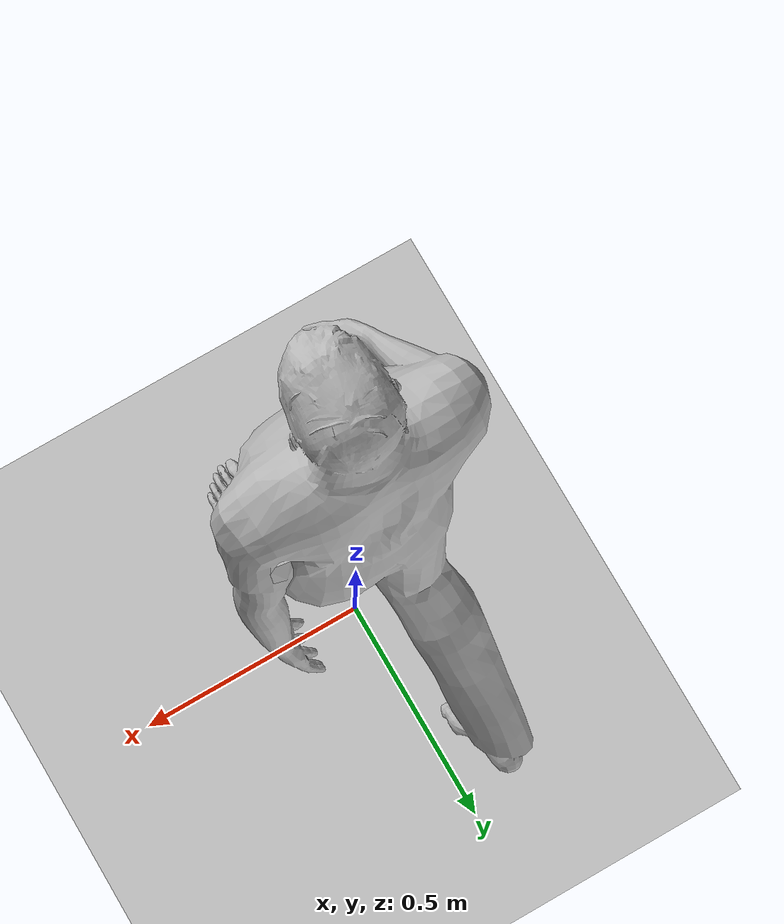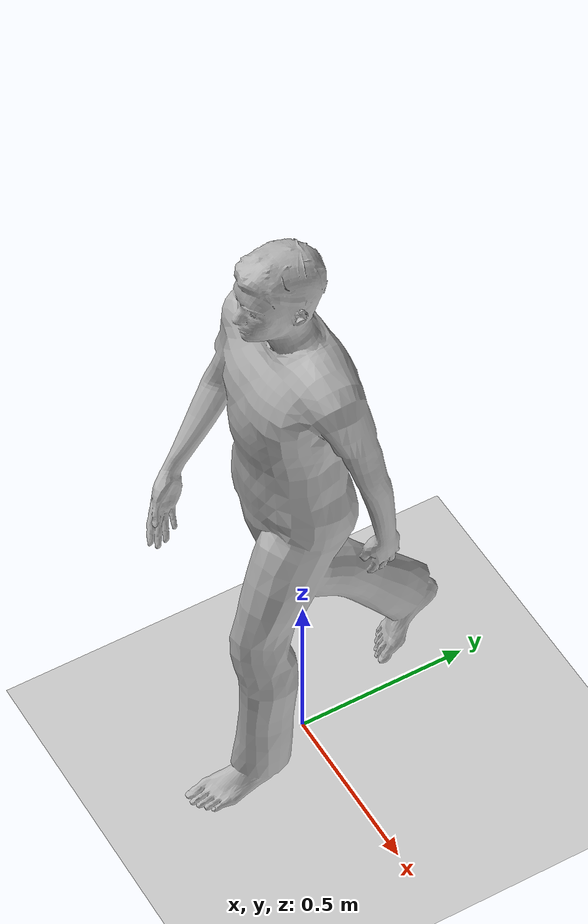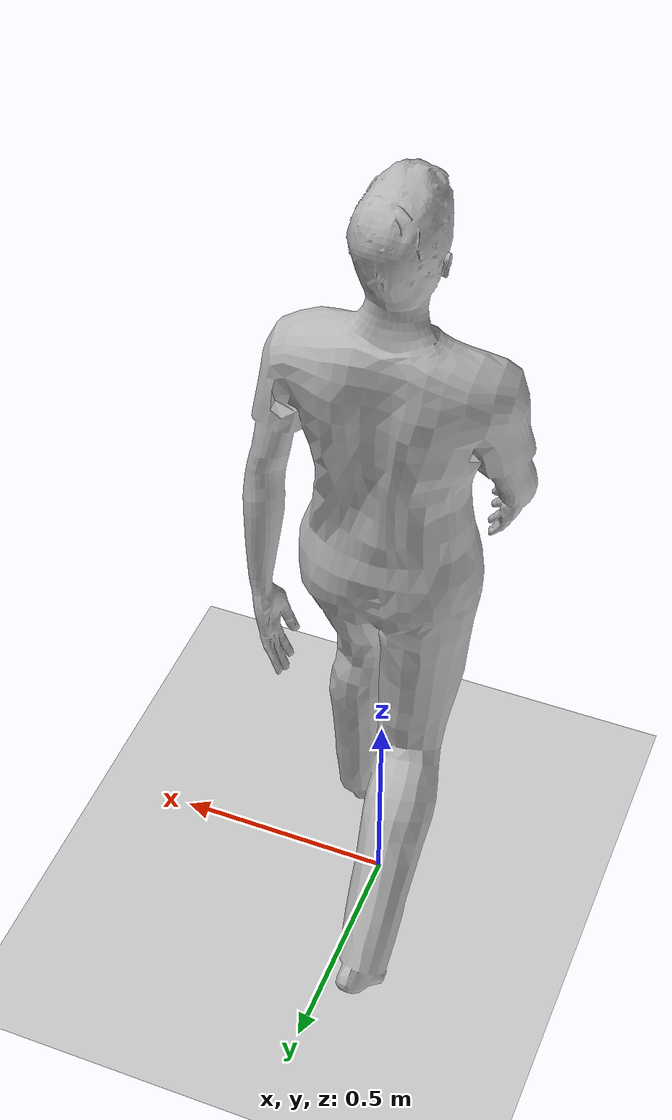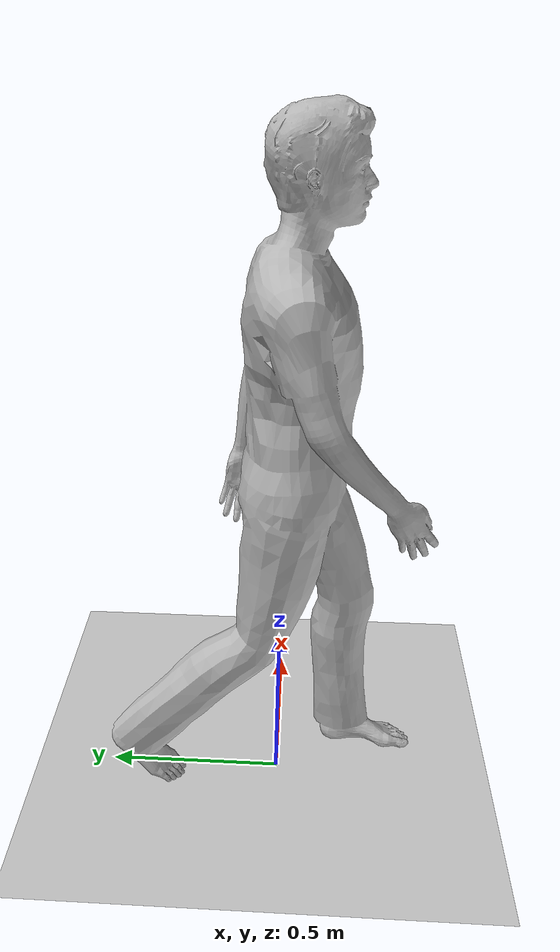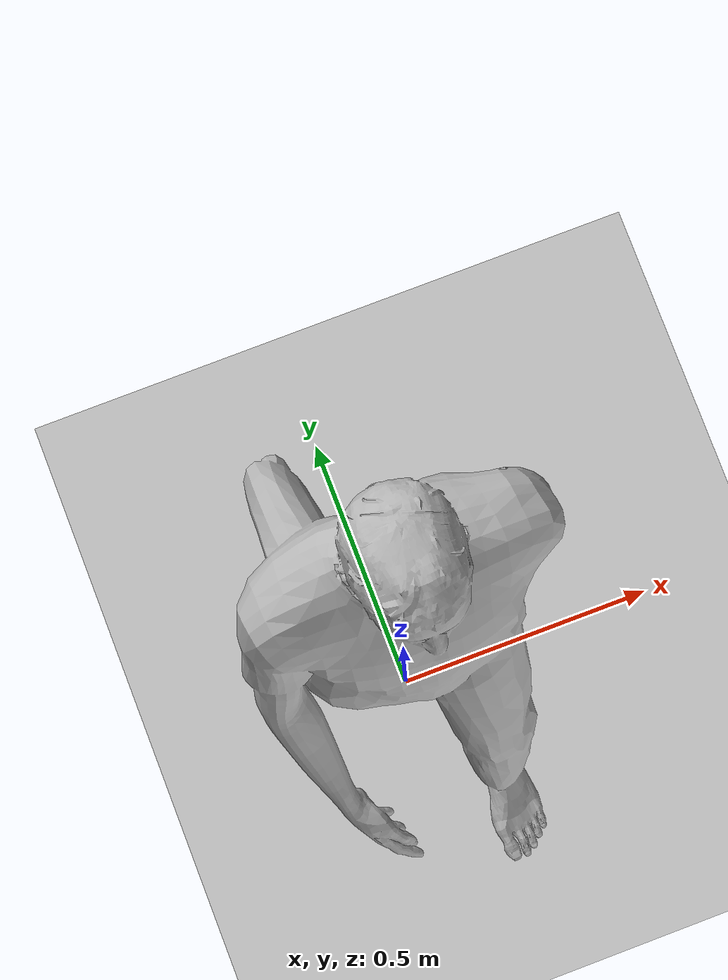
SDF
<?xml version="1.0" ?>
<sdf version="1.3">
  <world name="default">
    <!-- A global light source -->
    <include>
      <uri>model://sun</uri>
    </include>

    <!-- A ground plane -->
    <include>
      <uri>model://ground_plane</uri>
    </include>

    <model name='person_walking'>
      <link name='ped_link_1'>
        <gravity>0</gravity>
        <collision name='bottom'>
          <pose>0 0 0 0 0 0</pose>
            <geometry>
                      <cylinder>
                        <radius>0.1</radius>
                        <length>0.4</length>
                      </cylinder>
            </geometry>
          <max_contacts>10</max_contacts>
          <surface>
            <contact>
              <ode/>
            </contact>
            <bounce/>
            <friction>
            <torsional>
              <ode/>
            </torsional>
            <ode/>
          </friction>
          </surface>
        </collision>
        <collision name='person'>
          <pose>0 0 0 0 0 0</pose>
          <geometry>
            <mesh>
              <uri>model://person_walking/meshes/walking.dae</uri>
            </mesh>
          </geometry>
          <max_contacts>10</max_contacts>
        </collision>
        <visual name='visual'>
          <pose frame=''>0 0 0 0 -0 0</pose>
            <geometry>
              <mesh>
                <uri>model://person_walking/meshes/walking.dae</uri>
              </mesh>
            </geometry>
        </visual>
        <self_collide>0</self_collide>
      </link>
        <plugin name="object_controller" filename="libgazebo_ros_planar_move.so">
          <commandTopic>ped_link_1</commandTopic>
          <ini_x>10</ini_x>
          <ini_y>0</ini_y>
          <odometryTopic>odom</odometryTopic>
          <odometryFrame>odom</odometryFrame>
          <odometryRate>10.0</odometryRate>
          <robotBaseFrame>ped_link_1</robotBaseFrame>
        </plugin>
    </model>
        <model name='person_walking_2'>
          <link name='ped_link_2'>
          <gravity>0</gravity>
          <collision name='bottom'>
            <pose >0 0 0 0 0 0</pose>
            <geometry>
                      <cylinder>
                        <radius>0.1</radius>
                        <length>0.5</length>
                      </cylinder>
            </geometry>
          <max_contacts>10</max_contacts>
            <surface>
              <contact>
                <ode/>
              </contact>
            <bounce/>
             <friction>
               <torsional>
                 <ode/>
               </torsional>
               <ode/>
             </friction>
            </surface>
          </collision>
      <collision name='person'>
        <pose>0 0 0 0 0 0</pose>
        <geometry>
          <mesh>
            <uri>model://person_walking/meshes/walking.dae</uri>
          </mesh>
        </geometry>
        <max_contacts>10</max_contacts>
        <surface>
          <contact>
            <ode/>
          </contact>
          <bounce/>
          <friction>
            <torsional>
              <ode/>
            </torsional>
            <ode/>
          </friction>
        </surface>
      </collision>
          <visual name='visual'>
            <pose>0 0 0 0 -0 0</pose>
                 <geometry>
                   <mesh>
                     <uri>model://person_walking/meshes/walking.dae</uri>
                   </mesh>
                 </geometry>
               </visual>
               <self_collide>0</self_collide>
               <enable_wind>0</enable_wind>
               <kinematic>0</kinematic>
            </link>
            <plugin name="object_controller_2" filename="libgazebo_ros_planar_move.so">
              <commandTopic>ped_link_2</commandTopic>
              <ini_x>20</ini_x>
              <ini_y>0</ini_y>
              <odometryTopic>odom</odometryTopic>
              <odometryFrame>odom</odometryFrame>
              <odometryRate>10.0</odometryRate>
              <robotBaseFrame>ped_link_2</robotBaseFrame>
            </plugin>
        </model>

    <model name='person_walking_3'>
          <link name='ped_link_3'>
          <gravity>0</gravity>
          <collision name='bottom'>
            <pose >0 0 0 0 0 0</pose>
            <geometry>
                      <cylinder>
                        <radius>0.1</radius>
                        <length>0.4</length>
                      </cylinder>
            </geometry>
          <max_contacts>10</max_contacts>
            <surface>
              <contact>
                <ode/>
              </contact>
            <bounce/>
             <friction>
               <torsional>
                 <ode/>
               </torsional>
               <ode/>
             </friction>
            </surface>
          </collision>
      <collision name='person'>
        <pose>0 0 0 0 0 0</pose>
        <geometry>
          <mesh>
            <uri>model://person_walking/meshes/walking.dae</uri>
          </mesh>
        </geometry>
        <max_contacts>10</max_contacts>
        <surface>
          <contact>
            <ode/>
          </contact>
          <bounce/>
          <friction>
            <torsional>
              <ode/>
            </torsional>
            <ode/>
          </friction>
        </surface>
      </collision>
          <visual name='visual'>
            <pose>0 0 0 0 -0 0</pose>
                 <geometry>
                   <mesh>
                     <uri>model://person_walking/meshes/walking.dae</uri>
                   </mesh>
                 </geometry>
               </visual>
               <self_collide>0</self_collide>
               <enable_wind>0</enable_wind>
               <kinematic>0</kinematic>
            </link>
            <plugin name="object_controller_3" filename="libgazebo_ros_planar_move.so">
              <commandTopic>ped_link_3</commandTopic>
              <ini_x>2</ini_x>
              <ini_y>0</ini_y>
              <odometryTopic>odom</odometryTopic>
              <odometryFrame>odom</odometryFrame>
              <odometryRate>10.0</odometryRate>
              <robotBaseFrame>ped_link_3</robotBaseFrame>
            </plugin>
        </model>

<model name='person_walking_4'>
          <link name='ped_link_4'>
          <gravity>0</gravity>
          <collision name='bottom'>
            <pose >0 0 0 0 0 0</pose>
            <geometry>
                      <cylinder>
                        <radius>0.1</radius>
                        <length>0.4</length>
                      </cylinder>
            </geometry>
          <max_contacts>10</max_contacts>
            <surface>
              <contact>
                <ode/>
              </contact>
            <bounce/>
             <friction>
               <torsional>
                 <ode/>
               </torsional>
               <ode/>
             </friction>
            </surface>
          </collision>
      <collision name='person4'>
        <pose>0 0 0 0 0 0</pose>
        <geometry>
          <mesh>
            <uri>model://person_walking/meshes/walking.dae</uri>
          </mesh>
        </geometry>
        <max_contacts>10</max_contacts>
        <surface>
          <contact>
            <ode/>
          </contact>
          <bounce/>
          <friction>
            <torsional>
              <ode/>
            </torsional>
            <ode/>
          </friction>
        </surface>
      </collision>
          <visual name='visual'>
            <pose>0 0 0 0 -0 0</pose>
                 <geometry>
                   <mesh>
                     <uri>model://person_walking/meshes/walking.dae</uri>
                   </mesh>
                 </geometry>
               </visual>
               <self_collide>0</self_collide>
               <enable_wind>0</enable_wind>
               <kinematic>0</kinematic>
            </link>
            <plugin name="object_controller_4" filename="libgazebo_ros_planar_move.so">
              <commandTopic>ped_link_4</commandTopic>
              <ini_x>5</ini_x>
              <ini_y>0</ini_y>
              <odometryTopic>odom</odometryTopic>
              <odometryFrame>odom</odometryFrame>
              <odometryRate>10.0</odometryRate>
              <robotBaseFrame>ped_link_4</robotBaseFrame>
            </plugin>
        </model>

            <model name='person_walking_5'>
                  <link name='ped_link_5'>
                  <gravity>0</gravity>
                  <collision name='bottom'>
                    <pose >0 0 0 0 0 0</pose>
                    <geometry>
                              <cylinder>
                                <radius>0.1</radius>
                                <length>0.4</length>
                              </cylinder>
                    </geometry>
                  <max_contacts>10</max_contacts>
                    <surface>
                      <contact>
                        <ode/>
                      </contact>
                    <bounce/>
                     <friction>
                       <torsional>
                         <ode/>
                       </torsional>
                       <ode/>
                     </friction>
                    </surface>
                  </collision>
              <collision name='person'>
                <pose>0 0 0 0 0 0</pose>
                <geometry>
                  <mesh>
                    <uri>model://person_walking/meshes/walking.dae</uri>
                  </mesh>
                </geometry>
                <max_contacts>10</max_contacts>
                <surface>
                  <contact>
                    <ode/>
                  </contact>
                  <bounce/>
                  <friction>
                    <torsional>
                      <ode/>
                    </torsional>
                    <ode/>
                  </friction>
                </surface>
              </collision>
                  <visual name='visual'>
                    <pose>0 0 0 0 -0 0</pose>
                         <geometry>
                           <mesh>
                             <uri>model://person_walking/meshes/walking.dae</uri>
                           </mesh>
                         </geometry>
                       </visual>
                       <self_collide>0</self_collide>
                       <enable_wind>0</enable_wind>
                       <kinematic>0</kinematic>
                    </link>
                    <plugin name="object_controller_5" filename="libgazebo_ros_planar_move.so">
                      <commandTopic>ped_link_5</commandTopic>
                      <ini_x>30</ini_x>
                      <ini_y>0</ini_y>
                      <odometryTopic>odom</odometryTopic>
                      <odometryFrame>odom</odometryFrame>
                      <odometryRate>10.0</odometryRate>
                      <robotBaseFrame>ped_link_5</robotBaseFrame>
                    </plugin>
                </model>

        <model name='person_walking_6'>
                  <link name='ped_link_6'>
                  <gravity>0</gravity>
                  <collision name='bottom'>
                    <pose >0 0 0 0 0 0</pose>
                    <geometry>
                              <cylinder>
                                <radius>0.1</radius>
                                <length>0.4</length>
                              </cylinder>
                    </geometry>
                  <max_contacts>10</max_contacts>
                    <surface>
                      <contact>
                        <ode/>
                      </contact>
                    <bounce/>
                     <friction>
                       <torsional>
                         <ode/>
                       </torsional>
                       <ode/>
                     </friction>
                    </surface>
                  </collision>
              <collision name='person6'>
                <pose>0 0 0 0 0 0</pose>
                <geometry>
                  <mesh>
                    <uri>model://person_walking/meshes/walking.dae</uri>
                  </mesh>
                </geometry>
                <max_contacts>10</max_contacts>
                <surface>
                  <contact>
                    <ode/>
                  </contact>
                  <bounce/>
                  <friction>
                    <torsional>
                      <ode/>
                    </torsional>
                    <ode/>
                  </friction>
                </surface>
              </collision>
                  <visual name='visual'>
                    <pose>0 0 0 0 -0 0</pose>
                         <geometry>
                           <mesh>
                             <uri>model://person_walking/meshes/walking.dae</uri>
                           </mesh>
                         </geometry>
                       </visual>
                       <self_collide>0</self_collide>
                       <enable_wind>0</enable_wind>
                       <kinematic>0</kinematic>
                    </link>
                    <plugin name="object_controller_6" filename="libgazebo_ros_planar_move.so">
                      <commandTopic>ped_link_6</commandTopic>
                      <ini_x>40</ini_x>
                      <ini_y>0</ini_y>
                      <odometryTopic>odom</odometryTopic>
                      <odometryFrame>odom</odometryFrame>
                      <odometryRate>10.0</odometryRate>
                      <robotBaseFrame>ped_link_6</robotBaseFrame>
                    </plugin>
                </model>
  </world>
</sdf>
